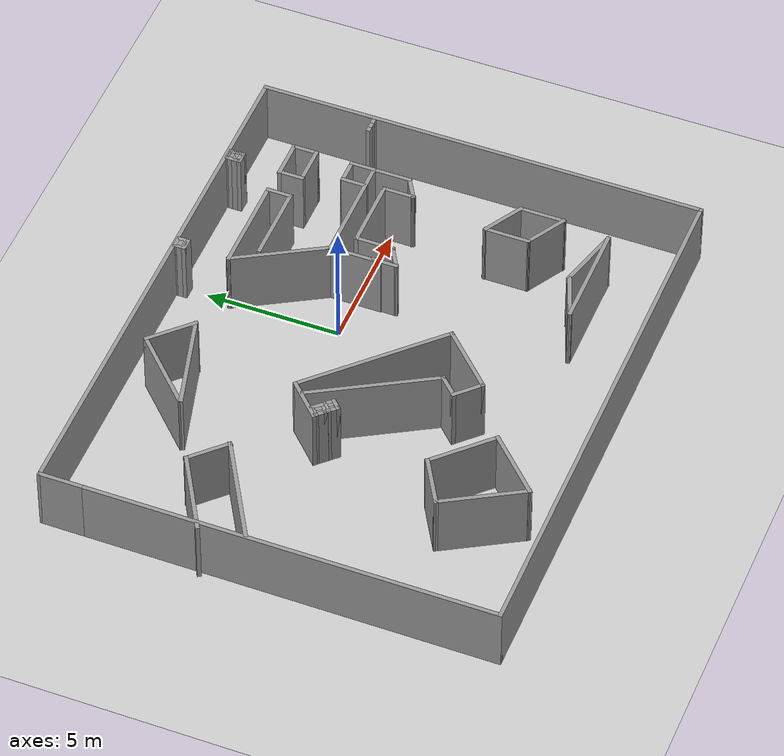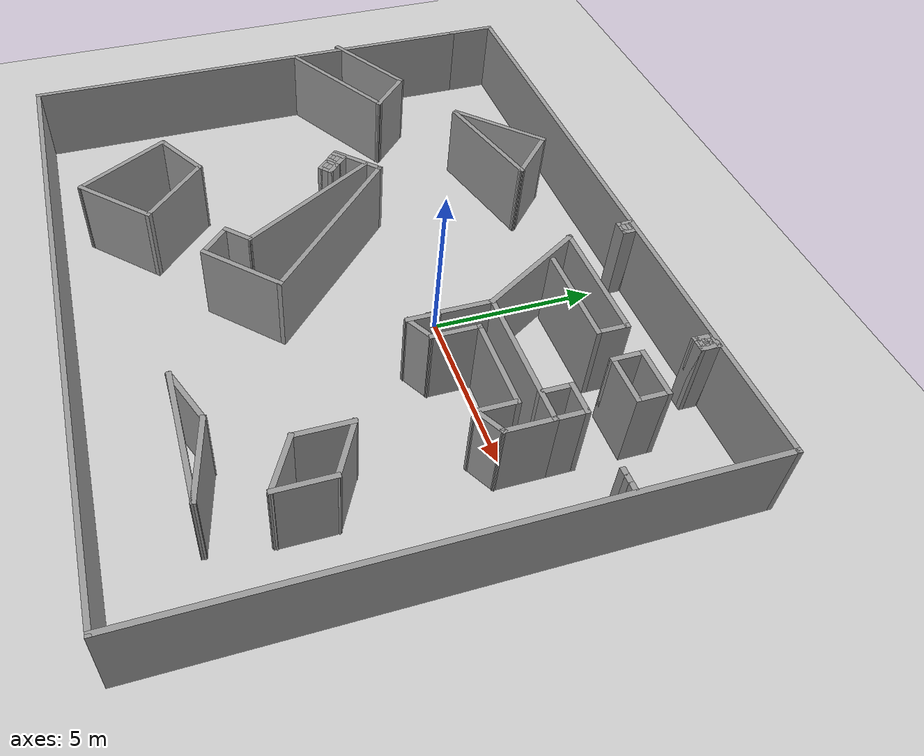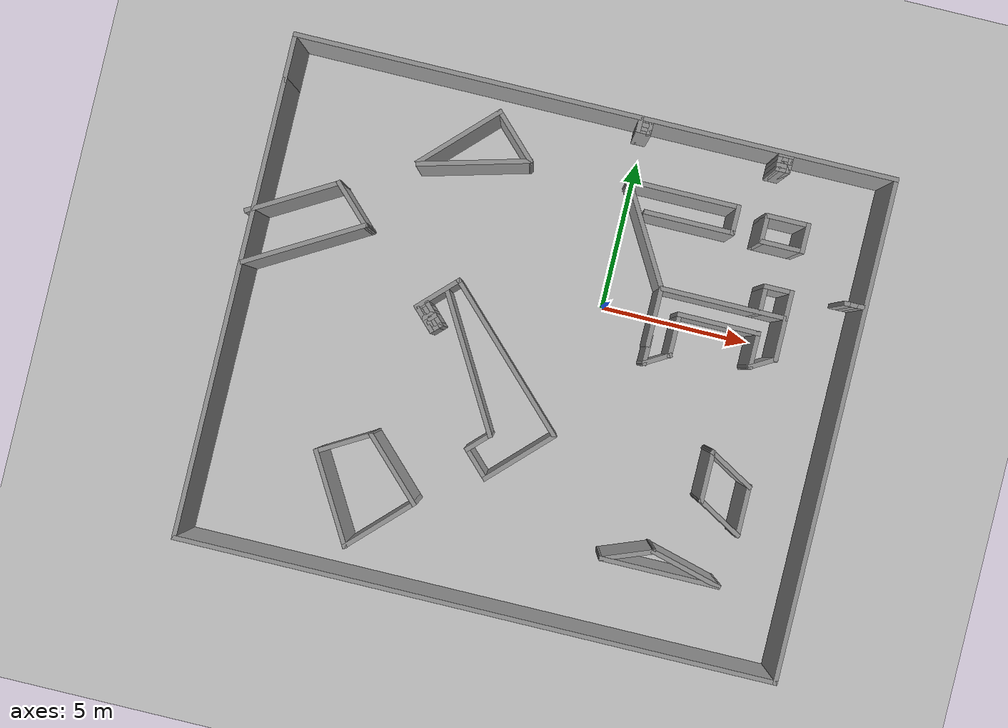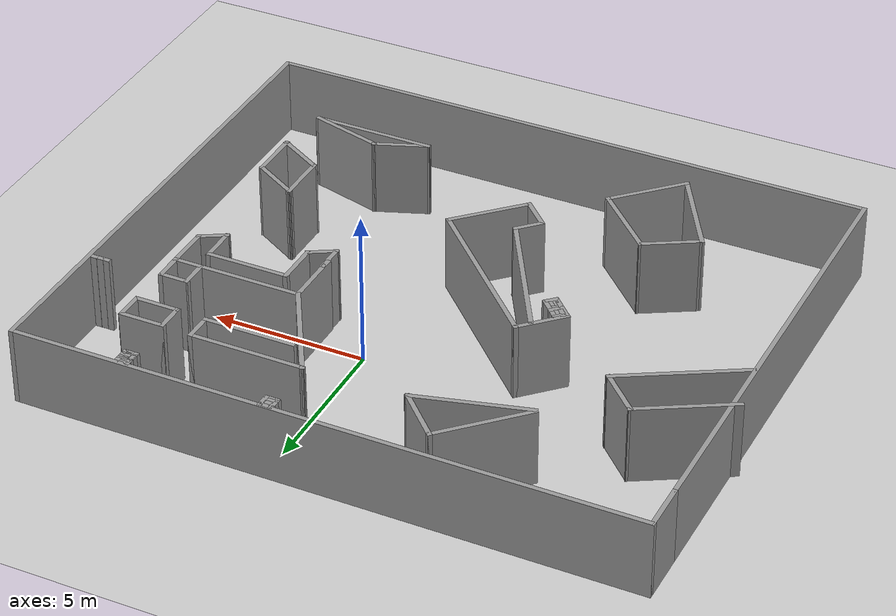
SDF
<sdf version="1.7">
 <world name="default">
  <light name="sun" type="directional">
   <pose>0 0 10 0 -0 0</pose>
   <diffuse>0.8 0.8 0.8 1</diffuse>
   <specular>0.2 0.2 0.2 1</specular>
   <attenuation>
    <range>1000</range>
    <constant>0.9</constant>
    <linear>0.01</linear>
    <quadratic>0.001</quadratic>
   </attenuation>
   <direction>-0.5 0.1 -0.9</direction>
   <spot><inner_angle>0</inner_angle><outer_angle>0</outer_angle><falloff>0</falloff></spot>
  </light>
  <model name="ground_plane">
   <static>1</static>
   <link name="link">
    <collision name="collision">
     <geometry><plane><normal>0 0 1</normal><size>100 100</size></plane></geometry>
     <surface>
      <contact><collide_bitmask>65535</collide_bitmask></contact>
      <friction><ode><mu>100</mu><mu2>50</mu2></ode></friction>
     </surface>
    </collision>
    <visual name="visual">
     <cast_shadows>0</cast_shadows>
     <geometry><plane><normal>0 0 1</normal><size>100 100</size></plane></geometry>
     <material>
      <script><uri>file://media/materials/scripts/gazebo.material</uri><name>Gazebo/Grey</name></script>
     </material>
    </visual>
   </link>
  </model>
  <gravity>0 0 -9.8</gravity>
  <magnetic_field>6e-06 2.3e-05 -4.2e-05</magnetic_field>
  <atmosphere type="adiabatic"/>
  <physics type="ode">
   <max_step_size>0.001</max_step_size>
   <real_time_factor>1</real_time_factor>
   <real_time_update_rate>1000</real_time_update_rate>
  </physics>
  <scene><ambient>0.4 0.4 0.4 1</ambient><background>0.7 0.7 0.7 1</background><shadows>1</shadows></scene>
  <spherical_coordinates>
   <surface_model>EARTH_WGS84</surface_model>
   <latitude_deg>0</latitude_deg>
   <longitude_deg>0</longitude_deg>
   <elevation>0</elevation>
   <heading_deg>0</heading_deg>
  </spherical_coordinates>
  <model name="paper6">
   <pose>-1.91148 -2.19412 0 0 -0 0</pose>
   <link name="Wall_10">
    <collision name="Wall_10_Collision">
     <geometry><box><size>4.25 0.15 2.5</size></box></geometry>
     <pose>0 0 1.25 0 -0 0</pose>
    </collision>
    <visual name="Wall_10_Visual">
     <pose>0 0 1.25 0 -0 0</pose>
     <geometry><box><size>4.25 0.15 2.5</size></box></geometry>
     <material>
      <script><uri>file://media/materials/scripts/gazebo.material</uri><name>Gazebo/Grey</name></script>
      <ambient>1 1 1 1</ambient>
     </material>
     <meta><layer>0</layer></meta>
    </visual>
    <pose>-7.97317 1.83972 0 0 -0 0.523599</pose>
   </link>
   <link name="Wall_11">
    <collision name="Wall_11_Collision">
     <geometry><box><size>1.75 0.15 2.5</size></box></geometry>
     <pose>0 0 1.25 0 -0 0</pose>
    </collision>
    <visual name="Wall_11_Visual">
     <pose>0 0 1.25 0 -0 0</pose>
     <geometry><box><size>1.75 0.15 2.5</size></box></geometry>
     <material>
      <script><uri>file://media/materials/scripts/gazebo.material</uri><name>Gazebo/Grey</name></script>
      <ambient>1 1 1 1</ambient>
     </material>
     <meta><layer>0</layer></meta>
    </visual>
    <pose>-6.76351 3.43041 0 0 -0 2.35619</pose>
   </link>
   <link name="Wall_12">
    <collision name="Wall_12_Collision">
     <geometry><box><size>3.25 0.15 2.5</size></box></geometry>
     <pose>0 0 1.25 0 -0 0</pose>
    </collision>
    <visual name="Wall_12_Visual">
     <pose>0 0 1.25 0 -0 0</pose>
     <geometry><box><size>3.25 0.15 2.5</size></box></geometry>
     <material>
      <script><uri>file://media/materials/scripts/gazebo.material</uri><name>Gazebo/Grey</name></script>
      <ambient>1 1 1 1</ambient>
     </material>
     <meta><layer>0</layer></meta>
    </visual>
    <pose>-8.67153 3.22109 0 0 -0 -2.61799</pose>
   </link>
   <link name="Wall_16">
    <collision name="Wall_16_Collision">
     <geometry><box><size>2 0.15 2.5</size></box></geometry>
     <pose>0 0 1.25 0 -0 0</pose>
    </collision>
    <visual name="Wall_16_Visual">
     <pose>0 0 1.25 0 -0 0</pose>
     <geometry><box><size>2 0.15 2.5</size></box></geometry>
     <material>
      <script><uri>file://media/materials/scripts/gazebo.material</uri><name>Gazebo/Grey</name></script>
      <ambient>1 1 1 1</ambient>
     </material>
     <meta><layer>0</layer></meta>
    </visual>
    <pose>-5.22554 -4.07303 0 0 -0 0.523599</pose>
   </link>
   <link name="Wall_17">
    <collision name="Wall_17_Collision">
     <geometry><box><size>2.75 0.15 2.5</size></box></geometry>
     <pose>0 0 1.25 0 -0 0</pose>
    </collision>
    <visual name="Wall_17_Visual">
     <pose>0 0 1.25 0 -0 0</pose>
     <geometry><box><size>2.75 0.15 2.5</size></box></geometry>
     <material>
      <script><uri>file://media/materials/scripts/gazebo.material</uri><name>Gazebo/Grey</name></script>
      <ambient>1 1 1 1</ambient>
     </material>
     <meta><layer>0</layer></meta>
    </visual>
    <pose>-3.50522 -4.52977 0 0 -0 -0.785398</pose>
   </link>
   <link name="Wall_18">
    <collision name="Wall_18_Collision">
     <geometry><box><size>2.75 0.15 2.5</size></box></geometry>
     <pose>0 0 1.25 0 -0 0</pose>
    </collision>
    <visual name="Wall_18_Visual">
     <pose>0 0 1.25 0 -0 0</pose>
     <geometry><box><size>2.75 0.15 2.5</size></box></geometry>
     <material>
      <script><uri>file://media/materials/scripts/gazebo.material</uri><name>Gazebo/Grey</name></script>
      <ambient>1 1 1 1</ambient>
     </material>
     <meta><layer>0</layer></meta>
    </visual>
    <pose>-3.50522 -6.36824 0 0 -0 -2.35619</pose>
   </link>
   <link name="Wall_19">
    <collision name="Wall_19_Collision">
     <geometry><box><size>3.33436 0.15 2.5</size></box></geometry>
     <pose>0 0 1.25 0 -0 0</pose>
    </collision>
    <visual name="Wall_19_Visual">
     <pose>0 0 1.25 0 -0 0</pose>
     <geometry><box><size>3.33436 0.15 2.5</size></box></geometry>
     <material>
      <script><uri>file://media/materials/scripts/gazebo.material</uri><name>Gazebo/Grey</name></script>
      <ambient>1 1 1 1</ambient>
     </material>
     <meta><layer>0</layer></meta>
    </visual>
    <pose>-5.22554 -5.9115 0 0 -0 2.09801</pose>
   </link>
   <link name="Wall_21">
    <collision name="Wall_21_Collision">
     <geometry><box><size>1.75 0.15 2.5</size></box></geometry>
     <pose>0 0 1.25 0 -0 0</pose>
    </collision>
    <visual name="Wall_21_Visual">
     <pose>0 0 1.25 0 -0 0</pose>
     <geometry><box><size>1.75 0.15 2.5</size></box></geometry>
     <material>
      <script><uri>file://media/materials/scripts/gazebo.material</uri><name>Gazebo/Grey</name></script>
      <ambient>1 1 1 1</ambient>
     </material>
     <meta><layer>0</layer></meta>
    </visual>
    <pose>-3.41387 1.28736 0 0 -0 0.785398</pose>
   </link>
   <link name="Wall_22">
    <collision name="Wall_22_Collision">
     <geometry><box><size>6 0.15 2.5</size></box></geometry>
     <pose>0 0 1.25 0 -0 0</pose>
    </collision>
    <visual name="Wall_22_Visual">
     <pose>0 0 1.25 0 -0 0</pose>
     <geometry><box><size>6 0.15 2.5</size></box></geometry>
     <material>
      <script><uri>file://media/materials/scripts/gazebo.material</uri><name>Gazebo/Grey</name></script>
      <ambient>1 1 1 1</ambient>
     </material>
     <meta><layer>0</layer></meta>
    </visual>
    <pose>-0.7799 -0.215241 0 0 -0 -0.785398</pose>
   </link>
   <link name="Wall_23">
    <collision name="Wall_23_Collision">
     <geometry><box><size>2.75 0.15 2.5</size></box></geometry>
     <pose>0 0 1.25 0 -0 0</pose>
    </collision>
    <visual name="Wall_23_Visual">
     <pose>0 0 1.25 0 -0 0</pose>
     <geometry><box><size>2.75 0.15 2.5</size></box></geometry>
     <material>
      <script><uri>file://media/materials/scripts/gazebo.material</uri><name>Gazebo/Grey</name></script>
      <ambient>1 1 1 1</ambient>
     </material>
     <meta><layer>0</layer></meta>
    </visual>
    <pose>0.369149 -3.20277 0 0 -0 -2.35619</pose>
   </link>
   <link name="Wall_24">
    <collision name="Wall_24_Collision">
     <geometry><box><size>1.25 0.15 2.5</size></box></geometry>
     <pose>0 0 1.25 0 -0 0</pose>
    </collision>
    <visual name="Wall_24_Visual">
     <pose>0 0 1.25 0 -0 0</pose>
     <geometry><box><size>1.25 0.15 2.5</size></box></geometry>
     <material>
      <script><uri>file://media/materials/scripts/gazebo.material</uri><name>Gazebo/Grey</name></script>
      <ambient>1 1 1 1</ambient>
     </material>
     <meta><layer>0</layer></meta>
    </visual>
    <pose>-0.938999 -3.7331 0 0 -0 2.35619</pose>
   </link>
   <link name="Wall_25">
    <collision name="Wall_25_Collision">
     <geometry><box><size>1 0.15 2.5</size></box></geometry>
     <pose>0 0 1.25 0 -0 0</pose>
    </collision>
    <visual name="Wall_25_Visual">
     <pose>0 0 1.25 0 -0 0</pose>
     <geometry><box><size>1 0.15 2.5</size></box></geometry>
     <material>
      <script><uri>file://media/materials/scripts/gazebo.material</uri><name>Gazebo/Grey</name></script>
      <ambient>1 1 1 1</ambient>
     </material>
     <meta><layer>0</layer></meta>
    </visual>
    <pose>-1.02739 -3.04367 0 0 -0 0.785398</pose>
   </link>
   <link name="Wall_26">
    <collision name="Wall_26_Collision">
     <geometry><box><size>5 0.15 2.5</size></box></geometry>
     <pose>0 0 1.25 0 -0 0</pose>
    </collision>
    <visual name="Wall_26_Visual">
     <pose>0 0 1.25 0 -0 0</pose>
     <geometry><box><size>5 0.15 2.5</size></box></geometry>
     <material>
      <script><uri>file://media/materials/scripts/gazebo.material</uri><name>Gazebo/Grey</name></script>
      <ambient>1 1 1 1</ambient>
     </material>
     <meta><layer>0</layer></meta>
    </visual>
    <pose>-1.93937 -0.643036 0 0 -0 2.0944</pose>
   </link>
   <link name="Wall_28">
    <collision name="Wall_28_Collision">
     <geometry><box><size>3.75 0.15 2.5</size></box></geometry>
     <pose>0 0 1.25 0 -0 0</pose>
    </collision>
    <visual name="Wall_28_Visual">
     <pose>0 0 1.25 0 -0 0</pose>
     <geometry><box><size>3.75 0.15 2.5</size></box></geometry>
     <material>
      <script><uri>file://media/materials/scripts/gazebo.material</uri><name>Gazebo/Grey</name></script>
      <ambient>1 1 1 1</ambient>
     </material>
     <meta><layer>0</layer></meta>
    </visual>
    <pose>-3.26442 5.65385 0 0 -0 0.261799</pose>
   </link>
   <link name="Wall_29">
    <collision name="Wall_29_Collision">
     <geometry><box><size>2 0.15 2.5</size></box></geometry>
     <pose>0 0 1.25 0 -0 0</pose>
    </collision>
    <visual name="Wall_29_Visual">
     <pose>0 0 1.25 0 -0 0</pose>
     <geometry><box><size>2 0.15 2.5</size></box></geometry>
     <material>
      <script><uri>file://media/materials/scripts/gazebo.material</uri><name>Gazebo/Grey</name></script>
      <ambient>1 1 1 1</ambient>
     </material>
     <meta><layer>0</layer></meta>
    </visual>
    <pose>-2.17983 6.77379 0 0 -0 2.35619</pose>
   </link>
   <link name="Wall_30">
    <collision name="Wall_30_Collision">
     <geometry><box><size>3.25 0.15 2.5</size></box></geometry>
     <pose>0 0 1.25 0 -0 0</pose>
    </collision>
    <visual name="Wall_30_Visual">
     <pose>0 0 1.25 0 -0 0</pose>
     <geometry><box><size>3.25 0.15 2.5</size></box></geometry>
     <material>
      <script><uri>file://media/materials/scripts/gazebo.material</uri><name>Gazebo/Grey</name></script>
      <ambient>1 1 1 1</ambient>
     </material>
     <meta><layer>0</layer></meta>
    </visual>
    <pose>-3.92991 6.33185 0 0 -0 -2.35619</pose>
   </link>
   <link name="Wall_32">
    <collision name="Wall_32_Collision">
     <geometry><box><size>4 0.15 2.5</size></box></geometry>
     <pose>0 0 1.25 0 -0 0</pose>
    </collision>
    <visual name="Wall_32_Visual">
     <pose>0 0 1.25 0 -0 0</pose>
     <geometry><box><size>4 0.15 2.5</size></box></geometry>
     <material>
      <script><uri>file://media/materials/scripts/gazebo.material</uri><name>Gazebo/Grey</name></script>
      <ambient>1 1 1 1</ambient>
     </material>
     <meta><layer>0</layer></meta>
    </visual>
    <pose>5.60922 -5.73669 0 0 -0 0</pose>
   </link>
   <link name="Wall_33">
    <collision name="Wall_33_Collision">
     <geometry><box><size>2.5 0.15 2.5</size></box></geometry>
     <pose>0 0 1.25 0 -0 0</pose>
    </collision>
    <visual name="Wall_33_Visual">
     <pose>0 0 1.25 0 -0 0</pose>
     <geometry><box><size>2.5 0.15 2.5</size></box></geometry>
     <material>
      <script><uri>file://media/materials/scripts/gazebo.material</uri><name>Gazebo/Grey</name></script>
      <ambient>1 1 1 1</ambient>
     </material>
     <meta><layer>0</layer></meta>
    </visual>
    <pose>6.39926 -5.43258 0 0 -0 2.87979</pose>
   </link>
   <link name="Wall_34">
    <collision name="Wall_34_Collision">
     <geometry><box><size>1.84309 0.15 2.5</size></box></geometry>
     <pose>0 0 1.25 0 -0 0</pose>
    </collision>
    <visual name="Wall_34_Visual">
     <pose>0 0 1.25 0 -0 0</pose>
     <geometry><box><size>1.84309 0.15 2.5</size></box></geometry>
     <material>
      <script><uri>file://media/materials/scripts/gazebo.material</uri><name>Gazebo/Grey</name></script>
      <ambient>1 1 1 1</ambient>
     </material>
     <meta><layer>0</layer></meta>
    </visual>
    <pose>4.47426 -5.43258 0 0 -0 -2.77414</pose>
   </link>
   <link name="Wall_36">
    <collision name="Wall_36_Collision">
     <geometry><box><size>1.75 0.15 2.5</size></box></geometry>
     <pose>0 0 1.25 0 -0 0</pose>
    </collision>
    <visual name="Wall_36_Visual">
     <pose>0 0 1.25 0 -0 0</pose>
     <geometry><box><size>1.75 0.15 2.5</size></box></geometry>
     <material>
      <script><uri>file://media/materials/scripts/gazebo.material</uri><name>Gazebo/Grey</name></script>
      <ambient>1 1 1 1</ambient>
     </material>
     <meta><layer>0</layer></meta>
    </visual>
    <pose>6.37084 -2.38706 0 0 -0 -1.5708</pose>
   </link>
   <link name="Wall_37">
    <collision name="Wall_37_Collision">
     <geometry><box><size>1.75 0.15 2.5</size></box></geometry>
     <pose>0 0 1.25 0 -0 0</pose>
    </collision>
    <visual name="Wall_37_Visual">
     <pose>0 0 1.25 0 -0 0</pose>
     <geometry><box><size>1.75 0.15 2.5</size></box></geometry>
     <material>
      <script><uri>file://media/materials/scripts/gazebo.material</uri><name>Gazebo/Grey</name></script>
      <ambient>1 1 1 1</ambient>
     </material>
     <meta><layer>0</layer></meta>
    </visual>
    <pose>7.06366 -3.58706 0 0 -0 -0.523599</pose>
   </link>
   <link name="Wall_38">
    <collision name="Wall_38_Collision">
     <geometry><box><size>1.75 0.15 2.5</size></box></geometry>
     <pose>0 0 1.25 0 -0 0</pose>
    </collision>
    <visual name="Wall_38_Visual">
     <pose>0 0 1.25 0 -0 0</pose>
     <geometry><box><size>1.75 0.15 2.5</size></box></geometry>
     <material>
      <script><uri>file://media/materials/scripts/gazebo.material</uri><name>Gazebo/Grey</name></script>
      <ambient>1 1 1 1</ambient>
     </material>
     <meta><layer>0</layer></meta>
    </visual>
    <pose>7.75648 -3.18706 0 0 -0 1.5708</pose>
   </link>
   <link name="Wall_39">
    <collision name="Wall_39_Collision">
     <geometry><box><size>1.75 0.15 2.5</size></box></geometry>
     <pose>0 0 1.25 0 -0 0</pose>
    </collision>
    <visual name="Wall_39_Visual">
     <pose>0 0 1.25 0 -0 0</pose>
     <geometry><box><size>1.75 0.15 2.5</size></box></geometry>
     <material>
      <script><uri>file://media/materials/scripts/gazebo.material</uri><name>Gazebo/Grey</name></script>
      <ambient>1 1 1 1</ambient>
     </material>
     <meta><layer>0</layer></meta>
    </visual>
    <pose>7.06366 -1.98706 0 0 -0 2.61799</pose>
   </link>
   <link name="Wall_4">
    <collision name="Wall_4_Collision">
     <geometry><box><size>15.25 0.15 2.5</size></box></geometry>
     <pose>0 0 1.25 0 -0 0</pose>
    </collision>
    <visual name="Wall_4_Visual">
     <pose>0 0 1.25 0 -0 0</pose>
     <geometry><box><size>15.25 0.15 2.5</size></box></geometry>
     <material>
      <script><uri>file://media/materials/scripts/gazebo.material</uri><name>Gazebo/Grey</name></script>
      <ambient>1 1 1 1</ambient>
     </material>
     <meta><layer>0</layer></meta>
    </visual>
    <pose>-9.80868 -0.75 0 0 -0 -1.5708</pose>
   </link>
   <link name="Wall_41">
    <collision name="Wall_41_Collision">
     <geometry><box><size>2 0.15 2.5</size></box></geometry>
     <pose>0 0 1.25 0 -0 0</pose>
    </collision>
    <visual name="Wall_41_Visual">
     <pose>0 0 1.25 0 -0 0</pose>
     <geometry><box><size>2 0.15 2.5</size></box></geometry>
     <material>
      <script><uri>file://media/materials/scripts/gazebo.material</uri><name>Gazebo/Grey</name></script>
      <ambient>1 1 1 1</ambient>
     </material>
     <meta><layer>0</layer></meta>
    </visual>
    <pose>3.52462 2.21076 0 0 -0 1.5708</pose>
   </link>
   <link name="Wall_42">
    <collision name="Wall_42_Collision">
     <geometry><box><size>4.25 0.15 2.5</size></box></geometry>
     <pose>0 0 1.25 0 -0 0</pose>
    </collision>
    <visual name="Wall_42_Visual">
     <pose>0 0 1.25 0 -0 0</pose>
     <geometry><box><size>4.25 0.15 2.5</size></box></geometry>
     <material>
      <script><uri>file://media/materials/scripts/gazebo.material</uri><name>Gazebo/Grey</name></script>
      <ambient>1 1 1 1</ambient>
     </material>
     <meta><layer>0</layer></meta>
    </visual>
    <pose>5.57462 3.13577 0 0 -0 0</pose>
   </link>
   <link name="Wall_43">
    <collision name="Wall_43_Collision">
     <geometry><box><size>1.5 0.15 2.5</size></box></geometry>
     <pose>0 0 1.25 0 -0 0</pose>
    </collision>
    <visual name="Wall_43_Visual">
     <pose>0 0 1.25 0 -0 0</pose>
     <geometry><box><size>1.5 0.15 2.5</size></box></geometry>
     <material>
      <script><uri>file://media/materials/scripts/gazebo.material</uri><name>Gazebo/Grey</name></script>
      <ambient>1 1 1 1</ambient>
     </material>
     <meta><layer>0</layer></meta>
    </visual>
    <pose>7.62462 2.46076 0 0 -0 -1.5708</pose>
   </link>
   <link name="Wall_44">
    <collision name="Wall_44_Collision">
     <geometry><box><size>1 0.15 2.5</size></box></geometry>
     <pose>0 0 1.25 0 -0 0</pose>
    </collision>
    <visual name="Wall_44_Visual">
     <pose>0 0 1.25 0 -0 0</pose>
     <geometry><box><size>1 0.15 2.5</size></box></geometry>
     <material>
      <script><uri>file://media/materials/scripts/gazebo.material</uri><name>Gazebo/Grey</name></script>
      <ambient>1 1 1 1</ambient>
     </material>
     <meta><layer>0</layer></meta>
    </visual>
    <pose>7.25656 1.57326 0 0 -0 -2.61799</pose>
   </link>
   <link name="Wall_45">
    <collision name="Wall_45_Collision">
     <geometry><box><size>1.25 0.15 2.5</size></box></geometry>
     <pose>0 0 1.25 0 -0 0</pose>
    </collision>
    <visual name="Wall_45_Visual">
     <pose>0 0 1.25 0 -0 0</pose>
     <geometry><box><size>1.25 0.15 2.5</size></box></geometry>
     <material>
      <script><uri>file://media/materials/scripts/gazebo.material</uri><name>Gazebo/Grey</name></script>
      <ambient>1 1 1 1</ambient>
     </material>
     <meta><layer>0</layer></meta>
    </visual>
    <pose>6.8885 1.91077 0 0 -0 1.5708</pose>
   </link>
   <link name="Wall_46">
    <collision name="Wall_46_Collision">
     <geometry><box><size>2.75 0.15 2.5</size></box></geometry>
     <pose>0 0 1.25 0 -0 0</pose>
    </collision>
    <visual name="Wall_46_Visual">
     <pose>0 0 1.25 0 -0 0</pose>
     <geometry><box><size>2.75 0.15 2.5</size></box></geometry>
     <material>
      <script><uri>file://media/materials/scripts/gazebo.material</uri><name>Gazebo/Grey</name></script>
      <ambient>1 1 1 1</ambient>
     </material>
     <meta><layer>0</layer></meta>
    </visual>
    <pose>5.5885 2.46076 0 0 -0 3.14159</pose>
   </link>
   <link name="Wall_47">
    <collision name="Wall_47_Collision">
     <geometry><box><size>1.5 0.15 2.5</size></box></geometry>
     <pose>0 0 1.25 0 -0 0</pose>
    </collision>
    <visual name="Wall_47_Visual">
     <pose>0 0 1.25 0 -0 0</pose>
     <geometry><box><size>1.5 0.15 2.5</size></box></geometry>
     <material>
      <script><uri>file://media/materials/scripts/gazebo.material</uri><name>Gazebo/Grey</name></script>
      <ambient>1 1 1 1</ambient>
     </material>
     <meta><layer>0</layer></meta>
    </visual>
    <pose>4.2885 1.78577 0 0 -0 -1.5708</pose>
   </link>
   <link name="Wall_48">
    <collision name="Wall_48_Collision">
     <geometry><box><size>1 0.15 2.5</size></box></geometry>
     <pose>0 0 1.25 0 -0 0</pose>
    </collision>
    <visual name="Wall_48_Visual">
     <pose>0 0 1.25 0 -0 0</pose>
     <geometry><box><size>1 0.15 2.5</size></box></geometry>
     <material>
      <script><uri>file://media/materials/scripts/gazebo.material</uri><name>Gazebo/Grey</name></script>
      <ambient>1 1 1 1</ambient>
     </material>
     <meta><layer>0</layer></meta>
    </visual>
    <pose>3.92044 0.898265 0 0 -0 -2.61799</pose>
   </link>
   <link name="Wall_49">
    <collision name="Wall_49_Collision">
     <geometry><box><size>1 0.15 2.5</size></box></geometry>
     <pose>0 0 1.25 0 -0 0</pose>
    </collision>
    <visual name="Wall_49_Visual">
     <pose>0 0 1.25 0 -0 0</pose>
     <geometry><box><size>1 0.15 2.5</size></box></geometry>
     <material>
      <script><uri>file://media/materials/scripts/gazebo.material</uri><name>Gazebo/Grey</name></script>
      <ambient>1 1 1 1</ambient>
     </material>
     <meta><layer>0</layer></meta>
    </visual>
    <pose>3.55238 1.11077 0 0 -0 1.5708</pose>
   </link>
   <link name="Wall_5">
    <collision name="Wall_5_Collision">
     <geometry><box><size>20 0.15 2.5</size></box></geometry>
     <pose>0 0 1.25 0 -0 0</pose>
    </collision>
    <visual name="Wall_5_Visual">
     <pose>0 0 1.25 0 -0 0</pose>
     <geometry><box><size>20 0.15 2.5</size></box></geometry>
     <material>
      <script><uri>file://media/materials/scripts/gazebo.material</uri><name>Gazebo/Grey</name></script>
      <ambient>1 1 1 1</ambient>
     </material>
     <meta><layer>0</layer></meta>
    </visual>
    <pose>0.11632 -8.3 0 0 -0 0</pose>
   </link>
   <link name="Wall_51">
    <collision name="Wall_51_Collision">
     <geometry><box><size>3.75 0.15 2.5</size></box></geometry>
     <pose>0 0 1.25 0 -0 0</pose>
    </collision>
    <visual name="Wall_51_Visual">
     <pose>0 0 1.25 0 -0 0</pose>
     <geometry><box><size>3.75 0.15 2.5</size></box></geometry>
     <material>
      <script><uri>file://media/materials/scripts/gazebo.material</uri><name>Gazebo/Grey</name></script>
      <ambient>1 1 1 1</ambient>
     </material>
     <meta><layer>0</layer></meta>
    </visual>
    <pose>2.62462 4.69461 0 0 -0 2.0944</pose>
   </link>
   <link name="Wall_52">
    <collision name="Wall_52_Collision">
     <geometry><box><size>3.75 0.15 2.5</size></box></geometry>
     <pose>0 0 1.25 0 -0 0</pose>
    </collision>
    <visual name="Wall_52_Visual">
     <pose>0 0 1.25 0 -0 0</pose>
     <geometry><box><size>3.75 0.15 2.5</size></box></geometry>
     <material>
      <script><uri>file://media/materials/scripts/gazebo.material</uri><name>Gazebo/Grey</name></script>
      <ambient>1 1 1 1</ambient>
     </material>
     <meta><layer>0</layer></meta>
    </visual>
    <pose>3.52462 6.25346 0 0 -0 0</pose>
   </link>
   <link name="Wall_53">
    <collision name="Wall_53_Collision">
     <geometry><box><size>1 0.15 2.5</size></box></geometry>
     <pose>0 0 1.25 0 -0 0</pose>
    </collision>
    <visual name="Wall_53_Visual">
     <pose>0 0 1.25 0 -0 0</pose>
     <geometry><box><size>1 0.15 2.5</size></box></geometry>
     <material>
      <script><uri>file://media/materials/scripts/gazebo.material</uri><name>Gazebo/Grey</name></script>
      <ambient>1 1 1 1</ambient>
     </material>
     <meta><layer>0</layer></meta>
    </visual>
    <pose>5.32462 5.82846 0 0 -0 -1.5708</pose>
   </link>
   <link name="Wall_54">
    <collision name="Wall_54_Collision">
     <geometry><box><size>3 0.15 2.5</size></box></geometry>
     <pose>0 0 1.25 0 -0 0</pose>
    </collision>
    <visual name="Wall_54_Visual">
     <pose>0 0 1.25 0 -0 0</pose>
     <geometry><box><size>3 0.15 2.5</size></box></geometry>
     <material>
      <script><uri>file://media/materials/scripts/gazebo.material</uri><name>Gazebo/Grey</name></script>
      <ambient>1 1 1 1</ambient>
     </material>
     <meta><layer>0</layer></meta>
    </visual>
    <pose>3.89962 5.40346 0 0 -0 3.14159</pose>
   </link>
   <link name="Wall_57">
    <collision name="Wall_57_Collision">
     <geometry><box><size>1 0.15 2.5</size></box></geometry>
     <pose>0 0 1.25 0 -0 0</pose>
    </collision>
    <visual name="Wall_57_Visual">
     <pose>0 0 1.25 0 -0 0</pose>
     <geometry><box><size>1 0.15 2.5</size></box></geometry>
     <material>
      <script><uri>file://media/materials/scripts/gazebo.material</uri><name>Gazebo/Grey</name></script>
      <ambient>1 1 1 1</ambient>
     </material>
     <meta><layer>0</layer></meta>
    </visual>
    <pose>6.29104 5.7818 0 0 -0 -1.5708</pose>
   </link>
   <link name="Wall_58">
    <collision name="Wall_58_Collision">
     <geometry><box><size>1.5 0.15 2.5</size></box></geometry>
     <pose>0 0 1.25 0 -0 0</pose>
    </collision>
    <visual name="Wall_58_Visual">
     <pose>0 0 1.25 0 -0 0</pose>
     <geometry><box><size>1.5 0.15 2.5</size></box></geometry>
     <material>
      <script><uri>file://media/materials/scripts/gazebo.material</uri><name>Gazebo/Grey</name></script>
      <ambient>1 1 1 1</ambient>
     </material>
     <meta><layer>0</layer></meta>
    </visual>
    <pose>6.96604 5.3568 0 0 -0 0</pose>
   </link>
   <link name="Wall_59">
    <collision name="Wall_59_Collision">
     <geometry><box><size>1 0.15 2.5</size></box></geometry>
     <pose>0 0 1.25 0 -0 0</pose>
    </collision>
    <visual name="Wall_59_Visual">
     <pose>0 0 1.25 0 -0 0</pose>
     <geometry><box><size>1 0.15 2.5</size></box></geometry>
     <material>
      <script><uri>file://media/materials/scripts/gazebo.material</uri><name>Gazebo/Grey</name></script>
      <ambient>1 1 1 1</ambient>
     </material>
     <meta><layer>0</layer></meta>
    </visual>
    <pose>7.64104 5.7818 0 0 -0 1.5708</pose>
   </link>
   <link name="Wall_6">
    <collision name="Wall_6_Collision">
     <geometry><box><size>16.75 0.15 2.5</size></box></geometry>
     <pose>0 0 1.25 0 -0 0</pose>
    </collision>
    <visual name="Wall_6_Visual">
     <pose>0 0 1.25 0 -0 0</pose>
     <geometry><box><size>16.75 0.15 2.5</size></box></geometry>
     <material>
      <script><uri>file://media/materials/scripts/gazebo.material</uri><name>Gazebo/Grey</name></script>
      <ambient>1 1 1 1</ambient>
     </material>
     <meta><layer>0</layer></meta>
    </visual>
    <pose>10.0413 0 0 0 -0 1.5708</pose>
   </link>
   <link name="Wall_60">
    <collision name="Wall_60_Collision">
     <geometry><box><size>1.5 0.15 2.5</size></box></geometry>
     <pose>0 0 1.25 0 -0 0</pose>
    </collision>
    <visual name="Wall_60_Visual">
     <pose>0 0 1.25 0 -0 0</pose>
     <geometry><box><size>1.5 0.15 2.5</size></box></geometry>
     <material>
      <script><uri>file://media/materials/scripts/gazebo.material</uri><name>Gazebo/Grey</name></script>
      <ambient>1 1 1 1</ambient>
     </material>
     <meta><layer>0</layer></meta>
    </visual>
    <pose>6.96604 6.2068 0 0 -0 3.14159</pose>
   </link>
   <link name="Wall_62">
    <collision name="Wall_62_Collision">
     <geometry><box><size>1 0.15 2.5</size></box></geometry>
     <pose>0 0 1.25 0 -0 0</pose>
    </collision>
    <visual name="Wall_62_Visual">
     <pose>0 0 1.25 0 -0 0</pose>
     <geometry><box><size>1 0.15 2.5</size></box></geometry>
     <material>
      <script><uri>file://media/materials/scripts/gazebo.material</uri><name>Gazebo/Grey</name></script>
      <ambient>1 1 1 1</ambient>
     </material>
     <meta><layer>0</layer></meta>
    </visual>
    <pose>7.62462 3.56076 0 0 -0 1.5708</pose>
   </link>
   <link name="Wall_63">
    <collision name="Wall_63_Collision">
     <geometry><box><size>1 0.15 2.5</size></box></geometry>
     <pose>0 0 1.25 0 -0 0</pose>
    </collision>
    <visual name="Wall_63_Visual">
     <pose>0 0 1.25 0 -0 0</pose>
     <geometry><box><size>1 0.15 2.5</size></box></geometry>
     <material>
      <script><uri>file://media/materials/scripts/gazebo.material</uri><name>Gazebo/Grey</name></script>
      <ambient>1 1 1 1</ambient>
     </material>
     <meta><layer>0</layer></meta>
    </visual>
    <pose>7.19962 3.98576 0 0 -0 3.14159</pose>
   </link>
   <link name="Wall_64">
    <collision name="Wall_64_Collision">
     <geometry><box><size>1 0.15 2.5</size></box></geometry>
     <pose>0 0 1.25 0 -0 0</pose>
    </collision>
    <visual name="Wall_64_Visual">
     <pose>0 0 1.25 0 -0 0</pose>
     <geometry><box><size>1 0.15 2.5</size></box></geometry>
     <material>
      <script><uri>file://media/materials/scripts/gazebo.material</uri><name>Gazebo/Grey</name></script>
      <ambient>1 1 1 1</ambient>
     </material>
     <meta><layer>0</layer></meta>
    </visual>
    <pose>6.77462 3.56076 0 0 -0 -1.5708</pose>
   </link>
   <link name="Wall_7">
    <collision name="Wall_7_Collision">
     <geometry><box><size>20 0.15 2.5</size></box></geometry>
     <pose>0 0 1.25 0 -0 0</pose>
    </collision>
    <visual name="Wall_7_Visual">
     <pose>0 0 1.25 0 -0 0</pose>
     <geometry><box><size>20 0.15 2.5</size></box></geometry>
     <material>
      <script><uri>file://media/materials/scripts/gazebo.material</uri><name>Gazebo/Grey</name></script>
      <ambient>1 1 1 1</ambient>
     </material>
     <meta><layer>0</layer></meta>
    </visual>
    <pose>0.11632 8.3 0 0 -0 3.14159</pose>
   </link>
   <link name="Wall_8">
    <collision name="Wall_8_Collision">
     <geometry><box><size>1.65 0.15 2.5</size></box></geometry>
     <pose>0 0 1.25 0 -0 0</pose>
    </collision>
    <visual name="Wall_8_Visual">
     <pose>0 0 1.25 0 -0 0</pose>
     <geometry><box><size>1.65 0.15 2.5</size></box></geometry>
     <material>
      <script><uri>file://media/materials/scripts/gazebo.material</uri><name>Gazebo/Grey</name></script>
      <ambient>1 1 1 1</ambient>
     </material>
     <meta><layer>0</layer></meta>
    </visual>
    <pose>-9.80868 7.55 0 0 -0 -1.5708</pose>
   </link>
   <static>1</static>
  </model>
  <model name="box05">
   <pose>1.13594 6.40459 0 0 -0 0</pose>
   <link name="Wall_1">
    <collision name="Wall_1_Collision">
     <geometry><box><size>0.5 0.15 2.5</size></box></geometry>
     <pose>0 0 1.25 0 -0 0</pose>
    </collision>
    <visual name="Wall_1_Visual">
     <pose>0 0 1.25 0 -0 0</pose>
     <geometry><box><size>0.5 0.15 2.5</size></box></geometry>
     <material>
      <script><uri>file://media/materials/scripts/gazebo.material</uri><name>Gazebo/Grey</name></script>
      <ambient>1 1 1 1</ambient>
     </material>
     <meta><layer>0</layer></meta>
    </visual>
    <pose>-1.43206 -0.523781 0 0 -0 -1.5708</pose>
   </link>
   <link name="Wall_11">
    <collision name="Wall_11_Collision">
     <geometry><box><size>0.25 0.15 2.5</size></box></geometry>
     <pose>0 0 1.25 0 -0 0</pose>
    </collision>
    <visual name="Wall_11_Visual">
     <pose>0 0 1.25 0 -0 0</pose>
     <geometry><box><size>0.25 0.15 2.5</size></box></geometry>
     <material>
      <script><uri>file://media/materials/scripts/gazebo.material</uri><name>Gazebo/Grey</name></script>
      <ambient>1 1 1 1</ambient>
     </material>
     <meta><layer>0</layer></meta>
    </visual>
    <pose>-1.25682 -0.494826 0 0 -0 0</pose>
   </link>
   <link name="Wall_13">
    <collision name="Wall_13_Collision">
     <geometry><box><size>0.25 0.15 2.5</size></box></geometry>
     <pose>0 0 1.25 0 -0 0</pose>
    </collision>
    <visual name="Wall_13_Visual">
     <pose>0 0 1.25 0 -0 0</pose>
     <geometry><box><size>0.25 0.15 2.5</size></box></geometry>
     <material>
      <script><uri>file://media/materials/scripts/gazebo.material</uri><name>Gazebo/Grey</name></script>
      <ambient>1 1 1 1</ambient>
     </material>
     <meta><layer>0</layer></meta>
    </visual>
    <pose>-1.26803 -0.618185 0 0 -0 0</pose>
   </link>
   <link name="Wall_2">
    <collision name="Wall_2_Collision">
     <geometry><box><size>0.5 0.15 2.5</size></box></geometry>
     <pose>0 0 1.25 0 -0 0</pose>
    </collision>
    <visual name="Wall_2_Visual">
     <pose>0 0 1.25 0 -0 0</pose>
     <geometry><box><size>0.5 0.15 2.5</size></box></geometry>
     <material>
      <script><uri>file://media/materials/scripts/gazebo.material</uri><name>Gazebo/Grey</name></script>
      <ambient>1 1 1 1</ambient>
     </material>
     <meta><layer>0</layer></meta>
    </visual>
    <pose>-1.25707 -0.698781 0 0 -0 0</pose>
   </link>
   <link name="Wall_3">
    <collision name="Wall_3_Collision">
     <geometry><box><size>0.5 0.15 2.5</size></box></geometry>
     <pose>0 0 1.25 0 -0 0</pose>
    </collision>
    <visual name="Wall_3_Visual">
     <pose>0 0 1.25 0 -0 0</pose>
     <geometry><box><size>0.5 0.15 2.5</size></box></geometry>
     <material>
      <script><uri>file://media/materials/scripts/gazebo.material</uri><name>Gazebo/Grey</name></script>
      <ambient>1 1 1 1</ambient>
     </material>
     <meta><layer>0</layer></meta>
    </visual>
    <pose>-1.08207 -0.523781 0 0 -0 1.5708</pose>
   </link>
   <link name="Wall_4">
    <collision name="Wall_4_Collision">
     <geometry><box><size>0.5 0.15 2.5</size></box></geometry>
     <pose>0 0 1.25 0 -0 0</pose>
    </collision>
    <visual name="Wall_4_Visual">
     <pose>0 0 1.25 0 -0 0</pose>
     <geometry><box><size>0.5 0.15 2.5</size></box></geometry>
     <material>
      <script><uri>file://media/materials/scripts/gazebo.material</uri><name>Gazebo/Grey</name></script>
      <ambient>1 1 1 1</ambient>
     </material>
     <meta><layer>0</layer></meta>
    </visual>
    <pose>-1.25707 -0.348781 0 0 -0 3.14159</pose>
   </link>
   <static>1</static>
  </model>
  <model name="box05_0">
   <pose>5.76803 6.37592 0 0 -0 0</pose>
   <link name="Wall_1">
    <collision name="Wall_1_Collision">
     <geometry><box><size>0.5 0.15 2.5</size></box></geometry>
     <pose>0 0 1.25 0 -0 0</pose>
    </collision>
    <visual name="Wall_1_Visual">
     <pose>0 0 1.25 0 -0 0</pose>
     <geometry><box><size>0.5 0.15 2.5</size></box></geometry>
     <material>
      <script><uri>file://media/materials/scripts/gazebo.material</uri><name>Gazebo/Grey</name></script>
      <ambient>1 1 1 1</ambient>
     </material>
     <meta><layer>0</layer></meta>
    </visual>
    <pose>-1.43206 -0.523781 0 0 -0 -1.5708</pose>
   </link>
   <link name="Wall_11">
    <collision name="Wall_11_Collision">
     <geometry><box><size>0.25 0.15 2.5</size></box></geometry>
     <pose>0 0 1.25 0 -0 0</pose>
    </collision>
    <visual name="Wall_11_Visual">
     <pose>0 0 1.25 0 -0 0</pose>
     <geometry><box><size>0.25 0.15 2.5</size></box></geometry>
     <material>
      <script><uri>file://media/materials/scripts/gazebo.material</uri><name>Gazebo/Grey</name></script>
      <ambient>1 1 1 1</ambient>
     </material>
     <meta><layer>0</layer></meta>
    </visual>
    <pose>-1.25682 -0.494826 0 0 -0 0</pose>
   </link>
   <link name="Wall_13">
    <collision name="Wall_13_Collision">
     <geometry><box><size>0.25 0.15 2.5</size></box></geometry>
     <pose>0 0 1.25 0 -0 0</pose>
    </collision>
    <visual name="Wall_13_Visual">
     <pose>0 0 1.25 0 -0 0</pose>
     <geometry><box><size>0.25 0.15 2.5</size></box></geometry>
     <material>
      <script><uri>file://media/materials/scripts/gazebo.material</uri><name>Gazebo/Grey</name></script>
      <ambient>1 1 1 1</ambient>
     </material>
     <meta><layer>0</layer></meta>
    </visual>
    <pose>-1.26803 -0.618185 0 0 -0 0</pose>
   </link>
   <link name="Wall_2">
    <collision name="Wall_2_Collision">
     <geometry><box><size>0.5 0.15 2.5</size></box></geometry>
     <pose>0 0 1.25 0 -0 0</pose>
    </collision>
    <visual name="Wall_2_Visual">
     <pose>0 0 1.25 0 -0 0</pose>
     <geometry><box><size>0.5 0.15 2.5</size></box></geometry>
     <material>
      <script><uri>file://media/materials/scripts/gazebo.material</uri><name>Gazebo/Grey</name></script>
      <ambient>1 1 1 1</ambient>
     </material>
     <meta><layer>0</layer></meta>
    </visual>
    <pose>-1.25707 -0.698781 0 0 -0 0</pose>
   </link>
   <link name="Wall_3">
    <collision name="Wall_3_Collision">
     <geometry><box><size>0.5 0.15 2.5</size></box></geometry>
     <pose>0 0 1.25 0 -0 0</pose>
    </collision>
    <visual name="Wall_3_Visual">
     <pose>0 0 1.25 0 -0 0</pose>
     <geometry><box><size>0.5 0.15 2.5</size></box></geometry>
     <material>
      <script><uri>file://media/materials/scripts/gazebo.material</uri><name>Gazebo/Grey</name></script>
      <ambient>1 1 1 1</ambient>
     </material>
     <meta><layer>0</layer></meta>
    </visual>
    <pose>-1.08207 -0.523781 0 0 -0 1.5708</pose>
   </link>
   <link name="Wall_4">
    <collision name="Wall_4_Collision">
     <geometry><box><size>0.5 0.15 2.5</size></box></geometry>
     <pose>0 0 1.25 0 -0 0</pose>
    </collision>
    <visual name="Wall_4_Visual">
     <pose>0 0 1.25 0 -0 0</pose>
     <geometry><box><size>0.5 0.15 2.5</size></box></geometry>
     <material>
      <script><uri>file://media/materials/scripts/gazebo.material</uri><name>Gazebo/Grey</name></script>
      <ambient>1 1 1 1</ambient>
     </material>
     <meta><layer>0</layer></meta>
    </visual>
    <pose>-1.25707 -0.348781 0 0 -0 3.14159</pose>
   </link>
   <static>1</static>
  </model>
  <model name="box05_1">
   <pose>5.76625 6.25089 0 0 -0 0</pose>
   <link name="Wall_1">
    <collision name="Wall_1_Collision">
     <geometry><box><size>0.5 0.15 2.5</size></box></geometry>
     <pose>0 0 1.25 0 -0 0</pose>
    </collision>
    <visual name="Wall_1_Visual">
     <pose>0 0 1.25 0 -0 0</pose>
     <geometry><box><size>0.5 0.15 2.5</size></box></geometry>
     <material>
      <script><uri>file://media/materials/scripts/gazebo.material</uri><name>Gazebo/Grey</name></script>
      <ambient>1 1 1 1</ambient>
     </material>
     <meta><layer>0</layer></meta>
    </visual>
    <pose>-1.43206 -0.523781 0 0 -0 -1.5708</pose>
   </link>
   <link name="Wall_11">
    <collision name="Wall_11_Collision">
     <geometry><box><size>0.25 0.15 2.5</size></box></geometry>
     <pose>0 0 1.25 0 -0 0</pose>
    </collision>
    <visual name="Wall_11_Visual">
     <pose>0 0 1.25 0 -0 0</pose>
     <geometry><box><size>0.25 0.15 2.5</size></box></geometry>
     <material>
      <script><uri>file://media/materials/scripts/gazebo.material</uri><name>Gazebo/Grey</name></script>
      <ambient>1 1 1 1</ambient>
     </material>
     <meta><layer>0</layer></meta>
    </visual>
    <pose>-1.25682 -0.494826 0 0 -0 0</pose>
   </link>
   <link name="Wall_13">
    <collision name="Wall_13_Collision">
     <geometry><box><size>0.25 0.15 2.5</size></box></geometry>
     <pose>0 0 1.25 0 -0 0</pose>
    </collision>
    <visual name="Wall_13_Visual">
     <pose>0 0 1.25 0 -0 0</pose>
     <geometry><box><size>0.25 0.15 2.5</size></box></geometry>
     <material>
      <script><uri>file://media/materials/scripts/gazebo.material</uri><name>Gazebo/Grey</name></script>
      <ambient>1 1 1 1</ambient>
     </material>
     <meta><layer>0</layer></meta>
    </visual>
    <pose>-1.26803 -0.618185 0 0 -0 0</pose>
   </link>
   <link name="Wall_2">
    <collision name="Wall_2_Collision">
     <geometry><box><size>0.5 0.15 2.5</size></box></geometry>
     <pose>0 0 1.25 0 -0 0</pose>
    </collision>
    <visual name="Wall_2_Visual">
     <pose>0 0 1.25 0 -0 0</pose>
     <geometry><box><size>0.5 0.15 2.5</size></box></geometry>
     <material>
      <script><uri>file://media/materials/scripts/gazebo.material</uri><name>Gazebo/Grey</name></script>
      <ambient>1 1 1 1</ambient>
     </material>
     <meta><layer>0</layer></meta>
    </visual>
    <pose>-1.25707 -0.698781 0 0 -0 0</pose>
   </link>
   <link name="Wall_3">
    <collision name="Wall_3_Collision">
     <geometry><box><size>0.5 0.15 2.5</size></box></geometry>
     <pose>0 0 1.25 0 -0 0</pose>
    </collision>
    <visual name="Wall_3_Visual">
     <pose>0 0 1.25 0 -0 0</pose>
     <geometry><box><size>0.5 0.15 2.5</size></box></geometry>
     <material>
      <script><uri>file://media/materials/scripts/gazebo.material</uri><name>Gazebo/Grey</name></script>
      <ambient>1 1 1 1</ambient>
     </material>
     <meta><layer>0</layer></meta>
    </visual>
    <pose>-1.08207 -0.523781 0 0 -0 1.5708</pose>
   </link>
   <link name="Wall_4">
    <collision name="Wall_4_Collision">
     <geometry><box><size>0.5 0.15 2.5</size></box></geometry>
     <pose>0 0 1.25 0 -0 0</pose>
    </collision>
    <visual name="Wall_4_Visual">
     <pose>0 0 1.25 0 -0 0</pose>
     <geometry><box><size>0.5 0.15 2.5</size></box></geometry>
     <material>
      <script><uri>file://media/materials/scripts/gazebo.material</uri><name>Gazebo/Grey</name></script>
      <ambient>1 1 1 1</ambient>
     </material>
     <meta><layer>0</layer></meta>
    </visual>
    <pose>-1.25707 -0.348781 0 0 -0 3.14159</pose>
   </link>
   <static>1</static>
  </model>
  <model name="box05_2">
   <pose>-4.32735 -2.0678 0 0 0 -0.79867</pose>
   <link name="Wall_1">
    <collision name="Wall_1_Collision">
     <geometry><box><size>0.5 0.15 2.5</size></box></geometry>
     <pose>0 0 1.25 0 -0 0</pose>
    </collision>
    <visual name="Wall_1_Visual">
     <pose>0 0 1.25 0 -0 0</pose>
     <geometry><box><size>0.5 0.15 2.5</size></box></geometry>
     <material>
      <script><uri>file://media/materials/scripts/gazebo.material</uri><name>Gazebo/Grey</name></script>
      <ambient>1 1 1 1</ambient>
     </material>
     <meta><layer>0</layer></meta>
    </visual>
    <pose>-1.43206 -0.523781 0 0 -0 -1.5708</pose>
   </link>
   <link name="Wall_11">
    <collision name="Wall_11_Collision">
     <geometry><box><size>0.25 0.15 2.5</size></box></geometry>
     <pose>0 0 1.25 0 -0 0</pose>
    </collision>
    <visual name="Wall_11_Visual">
     <pose>0 0 1.25 0 -0 0</pose>
     <geometry><box><size>0.25 0.15 2.5</size></box></geometry>
     <material>
      <script><uri>file://media/materials/scripts/gazebo.material</uri><name>Gazebo/Grey</name></script>
      <ambient>1 1 1 1</ambient>
     </material>
     <meta><layer>0</layer></meta>
    </visual>
    <pose>-1.25682 -0.494826 0 0 -0 0</pose>
   </link>
   <link name="Wall_13">
    <collision name="Wall_13_Collision">
     <geometry><box><size>0.25 0.15 2.5</size></box></geometry>
     <pose>0 0 1.25 0 -0 0</pose>
    </collision>
    <visual name="Wall_13_Visual">
     <pose>0 0 1.25 0 -0 0</pose>
     <geometry><box><size>0.25 0.15 2.5</size></box></geometry>
     <material>
      <script><uri>file://media/materials/scripts/gazebo.material</uri><name>Gazebo/Grey</name></script>
      <ambient>1 1 1 1</ambient>
     </material>
     <meta><layer>0</layer></meta>
    </visual>
    <pose>-1.26803 -0.618185 0 0 -0 0</pose>
   </link>
   <link name="Wall_2">
    <collision name="Wall_2_Collision">
     <geometry><box><size>0.5 0.15 2.5</size></box></geometry>
     <pose>0 0 1.25 0 -0 0</pose>
    </collision>
    <visual name="Wall_2_Visual">
     <pose>0 0 1.25 0 -0 0</pose>
     <geometry><box><size>0.5 0.15 2.5</size></box></geometry>
     <material>
      <script><uri>file://media/materials/scripts/gazebo.material</uri><name>Gazebo/Grey</name></script>
      <ambient>1 1 1 1</ambient>
     </material>
     <meta><layer>0</layer></meta>
    </visual>
    <pose>-1.25707 -0.698781 0 0 -0 0</pose>
   </link>
   <link name="Wall_3">
    <collision name="Wall_3_Collision">
     <geometry><box><size>0.5 0.15 2.5</size></box></geometry>
     <pose>0 0 1.25 0 -0 0</pose>
    </collision>
    <visual name="Wall_3_Visual">
     <pose>0 0 1.25 0 -0 0</pose>
     <geometry><box><size>0.5 0.15 2.5</size></box></geometry>
     <material>
      <script><uri>file://media/materials/scripts/gazebo.material</uri><name>Gazebo/Grey</name></script>
      <ambient>1 1 1 1</ambient>
     </material>
     <meta><layer>0</layer></meta>
    </visual>
    <pose>-1.08207 -0.523781 0 0 -0 1.5708</pose>
   </link>
   <link name="Wall_4">
    <collision name="Wall_4_Collision">
     <geometry><box><size>0.5 0.15 2.5</size></box></geometry>
     <pose>0 0 1.25 0 -0 0</pose>
    </collision>
    <visual name="Wall_4_Visual">
     <pose>0 0 1.25 0 -0 0</pose>
     <geometry><box><size>0.5 0.15 2.5</size></box></geometry>
     <material>
      <script><uri>file://media/materials/scripts/gazebo.material</uri><name>Gazebo/Grey</name></script>
      <ambient>1 1 1 1</ambient>
     </material>
     <meta><layer>0</layer></meta>
    </visual>
    <pose>-1.25707 -0.348781 0 0 -0 3.14159</pose>
   </link>
   <static>1</static>
  </model>
  <model name="box05_2_clone">
   <pose>-4.00369 -2.39704 0 0 0 -0.79867</pose>
   <link name="Wall_1">
    <collision name="Wall_1_Collision">
     <geometry><box><size>0.5 0.15 2.5</size></box></geometry>
     <pose>0 0 1.25 0 -0 0</pose>
    </collision>
    <visual name="Wall_1_Visual">
     <pose>0 0 1.25 0 -0 0</pose>
     <geometry><box><size>0.5 0.15 2.5</size></box></geometry>
     <material>
      <script><uri>file://media/materials/scripts/gazebo.material</uri><name>Gazebo/Grey</name></script>
      <ambient>1 1 1 1</ambient>
     </material>
     <meta><layer>0</layer></meta>
    </visual>
    <pose>-1.43206 -0.523781 0 0 -0 -1.5708</pose>
   </link>
   <link name="Wall_11">
    <collision name="Wall_11_Collision">
     <geometry><box><size>0.25 0.15 2.5</size></box></geometry>
     <pose>0 0 1.25 0 -0 0</pose>
    </collision>
    <visual name="Wall_11_Visual">
     <pose>0 0 1.25 0 -0 0</pose>
     <geometry><box><size>0.25 0.15 2.5</size></box></geometry>
     <material>
      <script><uri>file://media/materials/scripts/gazebo.material</uri><name>Gazebo/Grey</name></script>
      <ambient>1 1 1 1</ambient>
     </material>
     <meta><layer>0</layer></meta>
    </visual>
    <pose>-1.25682 -0.494826 0 0 -0 0</pose>
   </link>
   <link name="Wall_13">
    <collision name="Wall_13_Collision">
     <geometry><box><size>0.25 0.15 2.5</size></box></geometry>
     <pose>0 0 1.25 0 -0 0</pose>
    </collision>
    <visual name="Wall_13_Visual">
     <pose>0 0 1.25 0 -0 0</pose>
     <geometry><box><size>0.25 0.15 2.5</size></box></geometry>
     <material>
      <script><uri>file://media/materials/scripts/gazebo.material</uri><name>Gazebo/Grey</name></script>
      <ambient>1 1 1 1</ambient>
     </material>
     <meta><layer>0</layer></meta>
    </visual>
    <pose>-1.26803 -0.618185 0 0 -0 0</pose>
   </link>
   <link name="Wall_2">
    <collision name="Wall_2_Collision">
     <geometry><box><size>0.5 0.15 2.5</size></box></geometry>
     <pose>0 0 1.25 0 -0 0</pose>
    </collision>
    <visual name="Wall_2_Visual">
     <pose>0 0 1.25 0 -0 0</pose>
     <geometry><box><size>0.5 0.15 2.5</size></box></geometry>
     <material>
      <script><uri>file://media/materials/scripts/gazebo.material</uri><name>Gazebo/Grey</name></script>
      <ambient>1 1 1 1</ambient>
     </material>
     <meta><layer>0</layer></meta>
    </visual>
    <pose>-1.25707 -0.698781 0 0 -0 0</pose>
   </link>
   <link name="Wall_3">
    <collision name="Wall_3_Collision">
     <geometry><box><size>0.5 0.15 2.5</size></box></geometry>
     <pose>0 0 1.25 0 -0 0</pose>
    </collision>
    <visual name="Wall_3_Visual">
     <pose>0 0 1.25 0 -0 0</pose>
     <geometry><box><size>0.5 0.15 2.5</size></box></geometry>
     <material>
      <script><uri>file://media/materials/scripts/gazebo.material</uri><name>Gazebo/Grey</name></script>
      <ambient>1 1 1 1</ambient>
     </material>
     <meta><layer>0</layer></meta>
    </visual>
    <pose>-1.08207 -0.523781 0 0 -0 1.5708</pose>
   </link>
   <link name="Wall_4">
    <collision name="Wall_4_Collision">
     <geometry><box><size>0.5 0.15 2.5</size></box></geometry>
     <pose>0 0 1.25 0 -0 0</pose>
    </collision>
    <visual name="Wall_4_Visual">
     <pose>0 0 1.25 0 -0 0</pose>
     <geometry><box><size>0.5 0.15 2.5</size></box></geometry>
     <material>
      <script><uri>file://media/materials/scripts/gazebo.material</uri><name>Gazebo/Grey</name></script>
      <ambient>1 1 1 1</ambient>
     </material>
     <meta><layer>0</layer></meta>
    </visual>
    <pose>-1.25707 -0.348781 0 0 -0 3.14159</pose>
   </link>
   <static>1</static>
  </model>
  <model name="Untitled">
   <pose>6.94646 3.77724 0 0 -0 0</pose>
   <link name="Wall_0">
    <collision name="Wall_0_Collision">
     <geometry><box><size>0.25 0.15 2.5</size></box></geometry>
     <pose>0 0 1.25 0 -0 0</pose>
    </collision>
    <visual name="Wall_0_Visual">
     <pose>0 0 1.25 0 -0 0</pose>
     <geometry><box><size>0.25 0.15 2.5</size></box></geometry>
     <material>
      <script><uri>file://media/materials/scripts/gazebo.material</uri><name>Gazebo/Grey</name></script>
      <ambient>1 1 1 1</ambient>
     </material>
     <meta><layer>0</layer></meta>
    </visual>
    <pose>1.0225 -1.9075 0 0 -0 0</pose>
   </link>
   <static>1</static>
  </model>
  <model name="Untitled_clone">
   <pose>6.7244 3.77101 0 0 -0 0</pose>
   <link name="Wall_0">
    <collision name="Wall_0_Collision">
     <geometry><box><size>0.25 0.15 2.5</size></box></geometry>
     <pose>0 0 1.25 0 -0 0</pose>
    </collision>
    <visual name="Wall_0_Visual">
     <pose>0 0 1.25 0 -0 0</pose>
     <geometry><box><size>0.25 0.15 2.5</size></box></geometry>
     <material>
      <script><uri>file://media/materials/scripts/gazebo.material</uri><name>Gazebo/Grey</name></script>
      <ambient>1 1 1 1</ambient>
     </material>
     <meta><layer>0</layer></meta>
    </visual>
    <pose>1.0225 -1.9075 0 0 -0 0</pose>
   </link>
   <static>1</static>
  </model>
  <model name="Untitled_clone_0">
   <pose>6.52266 3.76994 0 0 -0 0</pose>
   <link name="Wall_0">
    <collision name="Wall_0_Collision">
     <geometry><box><size>0.25 0.15 2.5</size></box></geometry>
     <pose>0 0 1.25 0 -0 0</pose>
    </collision>
    <visual name="Wall_0_Visual">
     <pose>0 0 1.25 0 -0 0</pose>
     <geometry><box><size>0.25 0.15 2.5</size></box></geometry>
     <material>
      <script><uri>file://media/materials/scripts/gazebo.material</uri><name>Gazebo/Grey</name></script>
      <ambient>1 1 1 1</ambient>
     </material>
     <meta><layer>0</layer></meta>
    </visual>
    <pose>1.0225 -1.9075 0 0 -0 0</pose>
   </link>
   <static>1</static>
  </model>
 </world>
</sdf>
